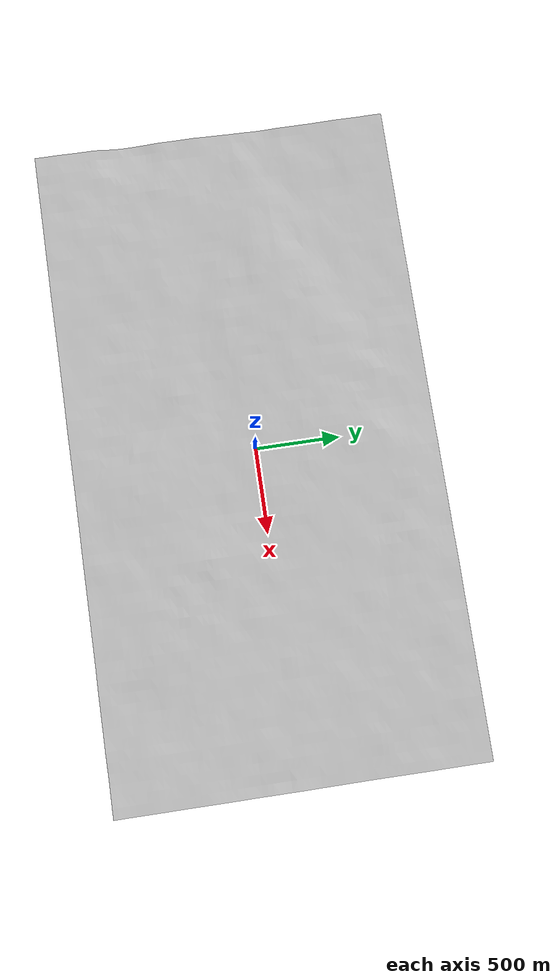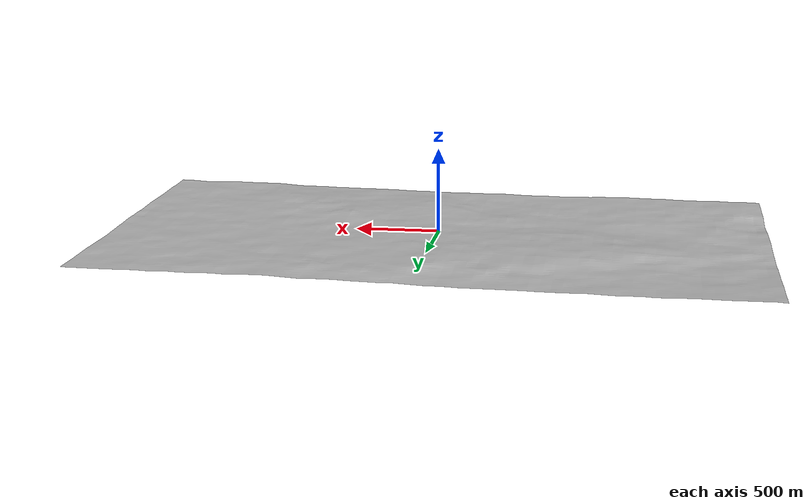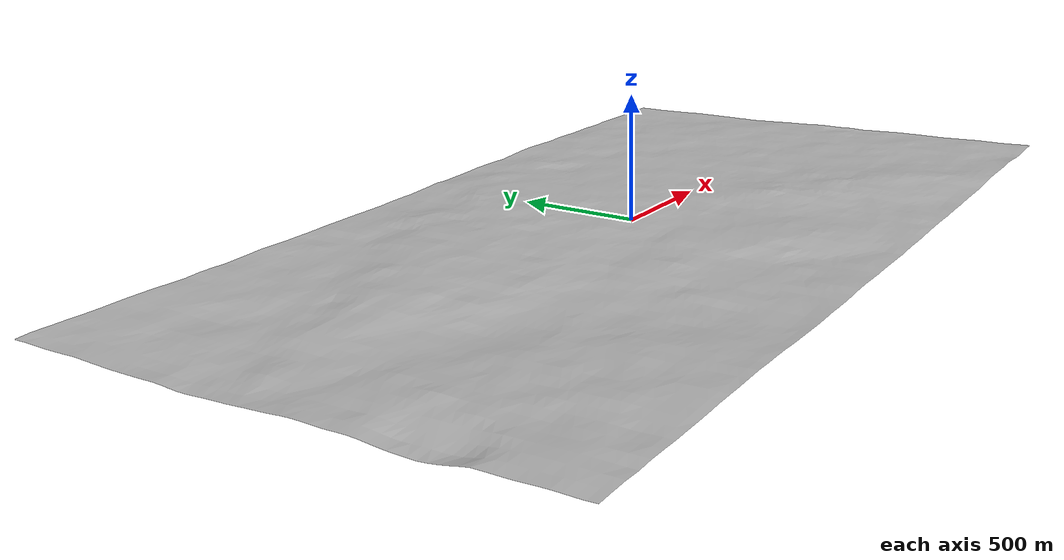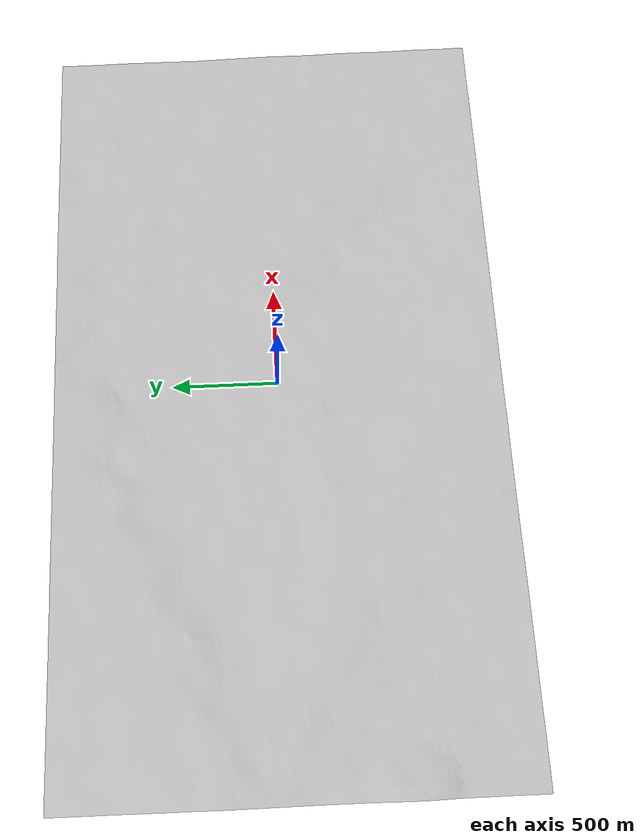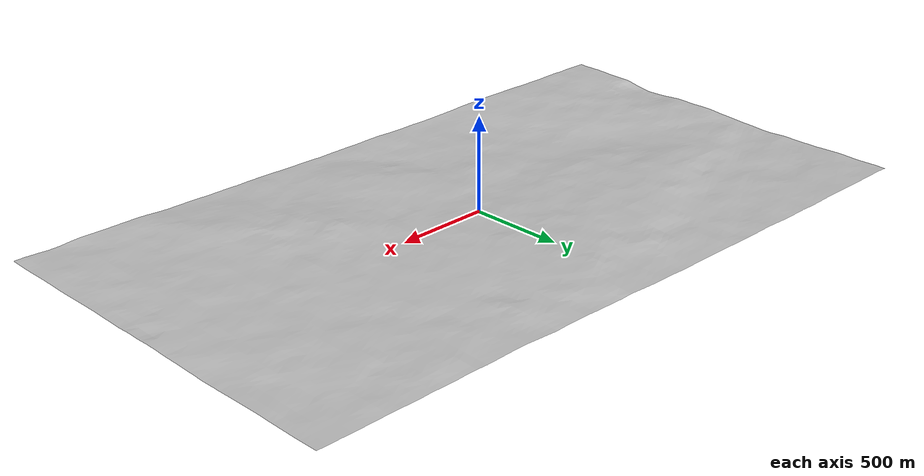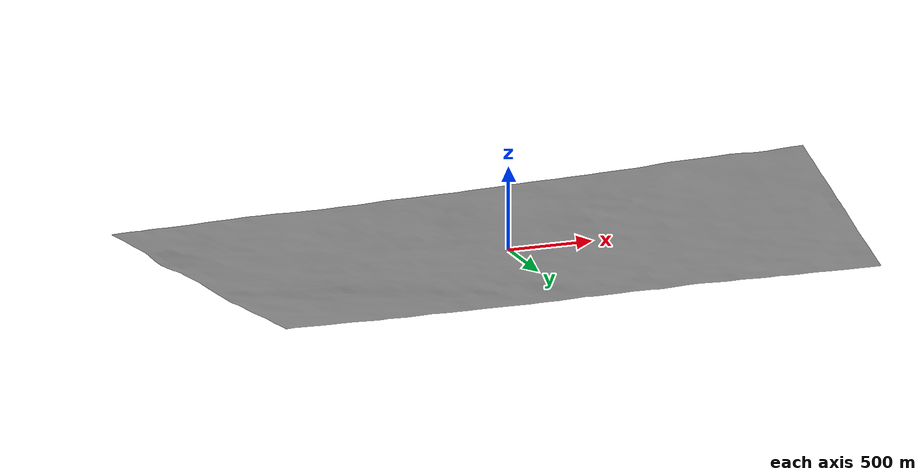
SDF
<?xml version="1.0" ?>
<sdf version="1.6">
  <model name="large_cerdanya_droneport">
    <static>true</static>
    <link name="link">
      <pose>0.0 1.0 -1.3 0 0 0</pose>
      <collision name="collision">
        <geometry>
          <mesh>
            <uri>model://large_cerdanya_droneport/meshes/large_cerdanya_centered.dae</uri>
            <scale>1.0 1.0 1.0</scale>
          </mesh>
        </geometry>
      </collision>
      <visual name="branch">
        <geometry>
          <mesh>
            <uri>model://large_cerdanya_droneport/meshes/large_cerdanya_centered.dae</uri>
            <scale>1.0 1.0 1.0</scale>
          </mesh>
        </geometry>
        <material>
          <script>
            <uri>model://large_cerdanya_droneport/materials/scripts/</uri>
            <uri>model://large_cerdanya_droneport/materials/textures/</uri>
            <name>CerdanyaDroneport/LargePlane</name>
          </script>
        </material>
      </visual>
    </link>
  </model>
</sdf>
